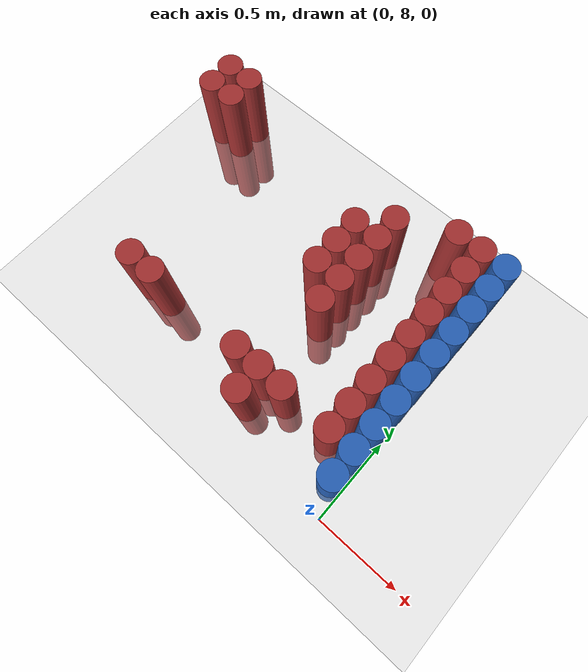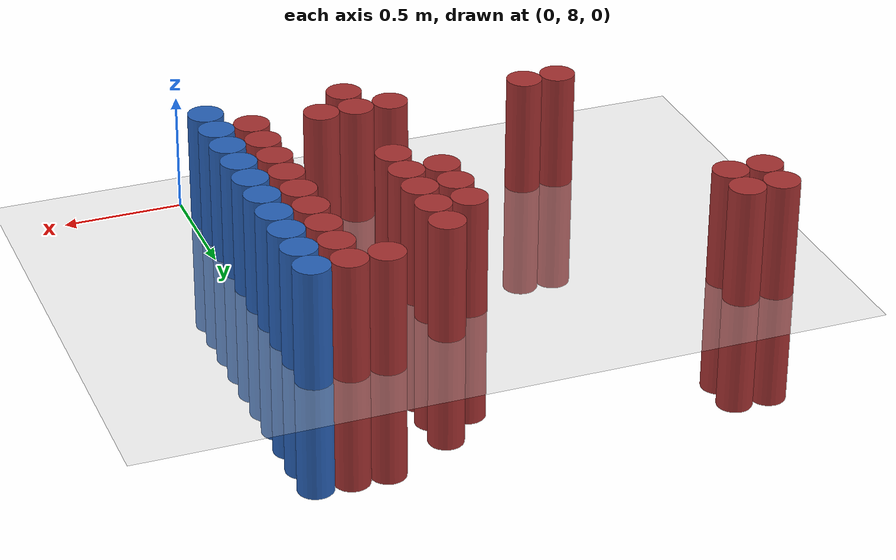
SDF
<sdf version="1.6">
 <world name="default">
  <model name="ground_plane">
   <static>1</static>
   <link name="link">
    <collision name="collision">
     <geometry><plane><normal>0 0 1</normal><size>100 100</size></plane></geometry>
     <surface><friction><ode><mu>100</mu><mu2>50</mu2></ode></friction></surface>
    </collision>
    <visual name="visual">
     <cast_shadows>0</cast_shadows>
     <geometry><plane><normal>0 0 1</normal><size>100 100</size></plane></geometry>
     <material>
      <script><uri>file://media/materials/scripts/gazebo.material</uri><name>Gazebo/Grey</name></script>
     </material>
    </visual>
   </link>
  </model>
  <model name="unit_cylinder_199">
   <static>1</static>
   <pose>-2.025000 9.375000 0.000000 0.000000 0.000000 0.000000</pose>
   <link name="link">
    <inertial>
     <mass>1</mass>
     <inertia><ixx>0.145833</ixx><ixy>0</ixy><ixz>0</ixz><iyy>0.145833</iyy><iyz>0</iyz><izz>0.125</izz></inertia>
    </inertial>
    <collision name="collision">
     <geometry><cylinder><radius>0.075000</radius><length>1</length></cylinder></geometry>
    </collision>
    <visual name="visual">
     <geometry><cylinder><radius>0.075000</radius><length>1</length></cylinder></geometry>
     <material>
      <ambient>0.648000 0.192000 0.192000 1</ambient>
      <diffuse>0.648000 0.192000 0.192000 1</diffuse>
     </material>
     <material>
      <script><name>Gazebo/Grey</name><uri>file://media/materials/scripts/gazebo.material</uri></script>
     </material>
    </visual>
    <sensor name="sensor_contact" type="contact"><contact><collision>collision</collision></contact></sensor>
   </link>
   <plugin filename="gz-sim-touchplugin-system" name="gz::sim::systems::TouchPlugin">
    <target>robot</target>
    <namespace>robot</namespace>
    <time>0.001</time>
    <enabled>true</enabled>
   </plugin>
  </model>
  <model name="unit_cylinder_200">
   <static>1</static>
   <pose>-2.025000 9.525000 0.000000 0.000000 0.000000 0.000000</pose>
   <link name="link">
    <inertial>
     <mass>1</mass>
     <inertia><ixx>0.145833</ixx><ixy>0</ixy><ixz>0</ixz><iyy>0.145833</iyy><iyz>0</iyz><izz>0.125</izz></inertia>
    </inertial>
    <collision name="collision">
     <geometry><cylinder><radius>0.075000</radius><length>1</length></cylinder></geometry>
    </collision>
    <visual name="visual">
     <geometry><cylinder><radius>0.075000</radius><length>1</length></cylinder></geometry>
     <material>
      <ambient>0.648000 0.192000 0.192000 1</ambient>
      <diffuse>0.648000 0.192000 0.192000 1</diffuse>
     </material>
     <material>
      <script><name>Gazebo/Grey</name><uri>file://media/materials/scripts/gazebo.material</uri></script>
     </material>
    </visual>
    <sensor name="sensor_contact" type="contact"><contact><collision>collision</collision></contact></sensor>
   </link>
   <plugin filename="gz-sim-touchplugin-system" name="gz::sim::systems::TouchPlugin">
    <target>robot</target>
    <namespace>robot</namespace>
    <time>0.001</time>
    <enabled>true</enabled>
   </plugin>
  </model>
  <model name="unit_cylinder_205">
   <static>1</static>
   <pose>-1.875000 9.375000 0.000000 0.000000 0.000000 0.000000</pose>
   <link name="link">
    <inertial>
     <mass>1</mass>
     <inertia><ixx>0.145833</ixx><ixy>0</ixy><ixz>0</ixz><iyy>0.145833</iyy><iyz>0</iyz><izz>0.125</izz></inertia>
    </inertial>
    <collision name="collision">
     <geometry><cylinder><radius>0.075000</radius><length>1</length></cylinder></geometry>
    </collision>
    <visual name="visual">
     <geometry><cylinder><radius>0.075000</radius><length>1</length></cylinder></geometry>
     <material>
      <ambient>0.648000 0.192000 0.192000 1</ambient>
      <diffuse>0.648000 0.192000 0.192000 1</diffuse>
     </material>
     <material>
      <script><name>Gazebo/Grey</name><uri>file://media/materials/scripts/gazebo.material</uri></script>
     </material>
    </visual>
    <sensor name="sensor_contact" type="contact"><contact><collision>collision</collision></contact></sensor>
   </link>
   <plugin filename="gz-sim-touchplugin-system" name="gz::sim::systems::TouchPlugin">
    <target>robot</target>
    <namespace>robot</namespace>
    <time>0.001</time>
    <enabled>true</enabled>
   </plugin>
  </model>
  <model name="unit_cylinder_206">
   <static>1</static>
   <pose>-1.875000 9.525000 0.000000 0.000000 0.000000 0.000000</pose>
   <link name="link">
    <inertial>
     <mass>1</mass>
     <inertia><ixx>0.145833</ixx><ixy>0</ixy><ixz>0</ixz><iyy>0.145833</iyy><iyz>0</iyz><izz>0.125</izz></inertia>
    </inertial>
    <collision name="collision">
     <geometry><cylinder><radius>0.075000</radius><length>1</length></cylinder></geometry>
    </collision>
    <visual name="visual">
     <geometry><cylinder><radius>0.075000</radius><length>1</length></cylinder></geometry>
     <material>
      <ambient>0.648000 0.192000 0.192000 1</ambient>
      <diffuse>0.648000 0.192000 0.192000 1</diffuse>
     </material>
     <material>
      <script><name>Gazebo/Grey</name><uri>file://media/materials/scripts/gazebo.material</uri></script>
     </material>
    </visual>
    <sensor name="sensor_contact" type="contact"><contact><collision>collision</collision></contact></sensor>
   </link>
   <plugin filename="gz-sim-touchplugin-system" name="gz::sim::systems::TouchPlugin">
    <target>robot</target>
    <namespace>robot</namespace>
    <time>0.001</time>
    <enabled>true</enabled>
   </plugin>
  </model>
  <model name="unit_cylinder_223">
   <static>1</static>
   <pose>-1.575000 8.325000 0.000000 0.000000 0.000000 0.000000</pose>
   <link name="link">
    <inertial>
     <mass>1</mass>
     <inertia><ixx>0.145833</ixx><ixy>0</ixy><ixz>0</ixz><iyy>0.145833</iyy><iyz>0</iyz><izz>0.125</izz></inertia>
    </inertial>
    <collision name="collision">
     <geometry><cylinder><radius>0.075000</radius><length>1</length></cylinder></geometry>
    </collision>
    <visual name="visual">
     <geometry><cylinder><radius>0.075000</radius><length>1</length></cylinder></geometry>
     <material>
      <ambient>0.648000 0.192000 0.192000 1</ambient>
      <diffuse>0.648000 0.192000 0.192000 1</diffuse>
     </material>
     <material>
      <script><name>Gazebo/Grey</name><uri>file://media/materials/scripts/gazebo.material</uri></script>
     </material>
    </visual>
    <sensor name="sensor_contact" type="contact"><contact><collision>collision</collision></contact></sensor>
   </link>
   <plugin filename="gz-sim-touchplugin-system" name="gz::sim::systems::TouchPlugin">
    <target>robot</target>
    <namespace>robot</namespace>
    <time>0.001</time>
    <enabled>true</enabled>
   </plugin>
  </model>
  <model name="unit_cylinder_229">
   <static>1</static>
   <pose>-1.425000 8.325000 0.000000 0.000000 0.000000 0.000000</pose>
   <link name="link">
    <inertial>
     <mass>1</mass>
     <inertia><ixx>0.145833</ixx><ixy>0</ixy><ixz>0</ixz><iyy>0.145833</iyy><iyz>0</iyz><izz>0.125</izz></inertia>
    </inertial>
    <collision name="collision">
     <geometry><cylinder><radius>0.075000</radius><length>1</length></cylinder></geometry>
    </collision>
    <visual name="visual">
     <geometry><cylinder><radius>0.075000</radius><length>1</length></cylinder></geometry>
     <material>
      <ambient>0.648000 0.192000 0.192000 1</ambient>
      <diffuse>0.648000 0.192000 0.192000 1</diffuse>
     </material>
     <material>
      <script><name>Gazebo/Grey</name><uri>file://media/materials/scripts/gazebo.material</uri></script>
     </material>
    </visual>
    <sensor name="sensor_contact" type="contact"><contact><collision>collision</collision></contact></sensor>
   </link>
   <plugin filename="gz-sim-touchplugin-system" name="gz::sim::systems::TouchPlugin">
    <target>robot</target>
    <namespace>robot</namespace>
    <time>0.001</time>
    <enabled>true</enabled>
   </plugin>
  </model>
  <model name="unit_cylinder_258">
   <static>1</static>
   <pose>-0.825000 8.325000 0.000000 0.000000 0.000000 0.000000</pose>
   <link name="link">
    <inertial>
     <mass>1</mass>
     <inertia><ixx>0.145833</ixx><ixy>0</ixy><ixz>0</ixz><iyy>0.145833</iyy><iyz>0</iyz><izz>0.125</izz></inertia>
    </inertial>
    <collision name="collision">
     <geometry><cylinder><radius>0.075000</radius><length>1</length></cylinder></geometry>
    </collision>
    <visual name="visual">
     <geometry><cylinder><radius>0.075000</radius><length>1</length></cylinder></geometry>
     <material>
      <ambient>0.648000 0.192000 0.192000 1</ambient>
      <diffuse>0.648000 0.192000 0.192000 1</diffuse>
     </material>
     <material>
      <script><name>Gazebo/Grey</name><uri>file://media/materials/scripts/gazebo.material</uri></script>
     </material>
    </visual>
    <sensor name="sensor_contact" type="contact"><contact><collision>collision</collision></contact></sensor>
   </link>
   <plugin filename="gz-sim-touchplugin-system" name="gz::sim::systems::TouchPlugin">
    <target>robot</target>
    <namespace>robot</namespace>
    <time>0.001</time>
    <enabled>true</enabled>
   </plugin>
  </model>
  <model name="unit_cylinder_259">
   <static>1</static>
   <pose>-0.825000 8.925000 0.000000 0.000000 0.000000 0.000000</pose>
   <link name="link">
    <inertial>
     <mass>1</mass>
     <inertia><ixx>0.145833</ixx><ixy>0</ixy><ixz>0</ixz><iyy>0.145833</iyy><iyz>0</iyz><izz>0.125</izz></inertia>
    </inertial>
    <collision name="collision">
     <geometry><cylinder><radius>0.075000</radius><length>1</length></cylinder></geometry>
    </collision>
    <visual name="visual">
     <geometry><cylinder><radius>0.075000</radius><length>1</length></cylinder></geometry>
     <material>
      <ambient>0.648000 0.192000 0.192000 1</ambient>
      <diffuse>0.648000 0.192000 0.192000 1</diffuse>
     </material>
     <material>
      <script><name>Gazebo/Grey</name><uri>file://media/materials/scripts/gazebo.material</uri></script>
     </material>
    </visual>
    <sensor name="sensor_contact" type="contact"><contact><collision>collision</collision></contact></sensor>
   </link>
   <plugin filename="gz-sim-touchplugin-system" name="gz::sim::systems::TouchPlugin">
    <target>robot</target>
    <namespace>robot</namespace>
    <time>0.001</time>
    <enabled>true</enabled>
   </plugin>
  </model>
  <model name="unit_cylinder_260">
   <static>1</static>
   <pose>-0.825000 9.075000 0.000000 0.000000 0.000000 0.000000</pose>
   <link name="link">
    <inertial>
     <mass>1</mass>
     <inertia><ixx>0.145833</ixx><ixy>0</ixy><ixz>0</ixz><iyy>0.145833</iyy><iyz>0</iyz><izz>0.125</izz></inertia>
    </inertial>
    <collision name="collision">
     <geometry><cylinder><radius>0.075000</radius><length>1</length></cylinder></geometry>
    </collision>
    <visual name="visual">
     <geometry><cylinder><radius>0.075000</radius><length>1</length></cylinder></geometry>
     <material>
      <ambient>0.648000 0.192000 0.192000 1</ambient>
      <diffuse>0.648000 0.192000 0.192000 1</diffuse>
     </material>
     <material>
      <script><name>Gazebo/Grey</name><uri>file://media/materials/scripts/gazebo.material</uri></script>
     </material>
    </visual>
    <sensor name="sensor_contact" type="contact"><contact><collision>collision</collision></contact></sensor>
   </link>
   <plugin filename="gz-sim-touchplugin-system" name="gz::sim::systems::TouchPlugin">
    <target>robot</target>
    <namespace>robot</namespace>
    <time>0.001</time>
    <enabled>true</enabled>
   </plugin>
  </model>
  <model name="unit_cylinder_261">
   <static>1</static>
   <pose>-0.825000 9.225000 0.000000 0.000000 0.000000 0.000000</pose>
   <link name="link">
    <inertial>
     <mass>1</mass>
     <inertia><ixx>0.145833</ixx><ixy>0</ixy><ixz>0</ixz><iyy>0.145833</iyy><iyz>0</iyz><izz>0.125</izz></inertia>
    </inertial>
    <collision name="collision">
     <geometry><cylinder><radius>0.075000</radius><length>1</length></cylinder></geometry>
    </collision>
    <visual name="visual">
     <geometry><cylinder><radius>0.075000</radius><length>1</length></cylinder></geometry>
     <material>
      <ambient>0.648000 0.192000 0.192000 1</ambient>
      <diffuse>0.648000 0.192000 0.192000 1</diffuse>
     </material>
     <material>
      <script><name>Gazebo/Grey</name><uri>file://media/materials/scripts/gazebo.material</uri></script>
     </material>
    </visual>
    <sensor name="sensor_contact" type="contact"><contact><collision>collision</collision></contact></sensor>
   </link>
   <plugin filename="gz-sim-touchplugin-system" name="gz::sim::systems::TouchPlugin">
    <target>robot</target>
    <namespace>robot</namespace>
    <time>0.001</time>
    <enabled>true</enabled>
   </plugin>
  </model>
  <model name="unit_cylinder_265">
   <static>1</static>
   <pose>-0.675000 8.175000 0.000000 0.000000 0.000000 0.000000</pose>
   <link name="link">
    <inertial>
     <mass>1</mass>
     <inertia><ixx>0.145833</ixx><ixy>0</ixy><ixz>0</ixz><iyy>0.145833</iyy><iyz>0</iyz><izz>0.125</izz></inertia>
    </inertial>
    <collision name="collision">
     <geometry><cylinder><radius>0.075000</radius><length>1</length></cylinder></geometry>
    </collision>
    <visual name="visual">
     <geometry><cylinder><radius>0.075000</radius><length>1</length></cylinder></geometry>
     <material>
      <ambient>0.648000 0.192000 0.192000 1</ambient>
      <diffuse>0.648000 0.192000 0.192000 1</diffuse>
     </material>
     <material>
      <script><name>Gazebo/Grey</name><uri>file://media/materials/scripts/gazebo.material</uri></script>
     </material>
    </visual>
    <sensor name="sensor_contact" type="contact"><contact><collision>collision</collision></contact></sensor>
   </link>
   <plugin filename="gz-sim-touchplugin-system" name="gz::sim::systems::TouchPlugin">
    <target>robot</target>
    <namespace>robot</namespace>
    <time>0.001</time>
    <enabled>true</enabled>
   </plugin>
  </model>
  <model name="unit_cylinder_266">
   <static>1</static>
   <pose>-0.675000 8.325000 0.000000 0.000000 0.000000 0.000000</pose>
   <link name="link">
    <inertial>
     <mass>1</mass>
     <inertia><ixx>0.145833</ixx><ixy>0</ixy><ixz>0</ixz><iyy>0.145833</iyy><iyz>0</iyz><izz>0.125</izz></inertia>
    </inertial>
    <collision name="collision">
     <geometry><cylinder><radius>0.075000</radius><length>1</length></cylinder></geometry>
    </collision>
    <visual name="visual">
     <geometry><cylinder><radius>0.075000</radius><length>1</length></cylinder></geometry>
     <material>
      <ambient>0.648000 0.192000 0.192000 1</ambient>
      <diffuse>0.648000 0.192000 0.192000 1</diffuse>
     </material>
     <material>
      <script><name>Gazebo/Grey</name><uri>file://media/materials/scripts/gazebo.material</uri></script>
     </material>
    </visual>
    <sensor name="sensor_contact" type="contact"><contact><collision>collision</collision></contact></sensor>
   </link>
   <plugin filename="gz-sim-touchplugin-system" name="gz::sim::systems::TouchPlugin">
    <target>robot</target>
    <namespace>robot</namespace>
    <time>0.001</time>
    <enabled>true</enabled>
   </plugin>
  </model>
  <model name="unit_cylinder_267">
   <static>1</static>
   <pose>-0.675000 8.775000 0.000000 0.000000 0.000000 0.000000</pose>
   <link name="link">
    <inertial>
     <mass>1</mass>
     <inertia><ixx>0.145833</ixx><ixy>0</ixy><ixz>0</ixz><iyy>0.145833</iyy><iyz>0</iyz><izz>0.125</izz></inertia>
    </inertial>
    <collision name="collision">
     <geometry><cylinder><radius>0.075000</radius><length>1</length></cylinder></geometry>
    </collision>
    <visual name="visual">
     <geometry><cylinder><radius>0.075000</radius><length>1</length></cylinder></geometry>
     <material>
      <ambient>0.648000 0.192000 0.192000 1</ambient>
      <diffuse>0.648000 0.192000 0.192000 1</diffuse>
     </material>
     <material>
      <script><name>Gazebo/Grey</name><uri>file://media/materials/scripts/gazebo.material</uri></script>
     </material>
    </visual>
    <sensor name="sensor_contact" type="contact"><contact><collision>collision</collision></contact></sensor>
   </link>
   <plugin filename="gz-sim-touchplugin-system" name="gz::sim::systems::TouchPlugin">
    <target>robot</target>
    <namespace>robot</namespace>
    <time>0.001</time>
    <enabled>true</enabled>
   </plugin>
  </model>
  <model name="unit_cylinder_268">
   <static>1</static>
   <pose>-0.675000 8.925000 0.000000 0.000000 0.000000 0.000000</pose>
   <link name="link">
    <inertial>
     <mass>1</mass>
     <inertia><ixx>0.145833</ixx><ixy>0</ixy><ixz>0</ixz><iyy>0.145833</iyy><iyz>0</iyz><izz>0.125</izz></inertia>
    </inertial>
    <collision name="collision">
     <geometry><cylinder><radius>0.075000</radius><length>1</length></cylinder></geometry>
    </collision>
    <visual name="visual">
     <geometry><cylinder><radius>0.075000</radius><length>1</length></cylinder></geometry>
     <material>
      <ambient>0.648000 0.192000 0.192000 1</ambient>
      <diffuse>0.648000 0.192000 0.192000 1</diffuse>
     </material>
     <material>
      <script><name>Gazebo/Grey</name><uri>file://media/materials/scripts/gazebo.material</uri></script>
     </material>
    </visual>
    <sensor name="sensor_contact" type="contact"><contact><collision>collision</collision></contact></sensor>
   </link>
   <plugin filename="gz-sim-touchplugin-system" name="gz::sim::systems::TouchPlugin">
    <target>robot</target>
    <namespace>robot</namespace>
    <time>0.001</time>
    <enabled>true</enabled>
   </plugin>
  </model>
  <model name="unit_cylinder_269">
   <static>1</static>
   <pose>-0.675000 9.075000 0.000000 0.000000 0.000000 0.000000</pose>
   <link name="link">
    <inertial>
     <mass>1</mass>
     <inertia><ixx>0.145833</ixx><ixy>0</ixy><ixz>0</ixz><iyy>0.145833</iyy><iyz>0</iyz><izz>0.125</izz></inertia>
    </inertial>
    <collision name="collision">
     <geometry><cylinder><radius>0.075000</radius><length>1</length></cylinder></geometry>
    </collision>
    <visual name="visual">
     <geometry><cylinder><radius>0.075000</radius><length>1</length></cylinder></geometry>
     <material>
      <ambient>0.648000 0.192000 0.192000 1</ambient>
      <diffuse>0.648000 0.192000 0.192000 1</diffuse>
     </material>
     <material>
      <script><name>Gazebo/Grey</name><uri>file://media/materials/scripts/gazebo.material</uri></script>
     </material>
    </visual>
    <sensor name="sensor_contact" type="contact"><contact><collision>collision</collision></contact></sensor>
   </link>
   <plugin filename="gz-sim-touchplugin-system" name="gz::sim::systems::TouchPlugin">
    <target>robot</target>
    <namespace>robot</namespace>
    <time>0.001</time>
    <enabled>true</enabled>
   </plugin>
  </model>
  <model name="unit_cylinder_270">
   <static>1</static>
   <pose>-0.675000 9.225000 0.000000 0.000000 0.000000 0.000000</pose>
   <link name="link">
    <inertial>
     <mass>1</mass>
     <inertia><ixx>0.145833</ixx><ixy>0</ixy><ixz>0</ixz><iyy>0.145833</iyy><iyz>0</iyz><izz>0.125</izz></inertia>
    </inertial>
    <collision name="collision">
     <geometry><cylinder><radius>0.075000</radius><length>1</length></cylinder></geometry>
    </collision>
    <visual name="visual">
     <geometry><cylinder><radius>0.075000</radius><length>1</length></cylinder></geometry>
     <material>
      <ambient>0.648000 0.192000 0.192000 1</ambient>
      <diffuse>0.648000 0.192000 0.192000 1</diffuse>
     </material>
     <material>
      <script><name>Gazebo/Grey</name><uri>file://media/materials/scripts/gazebo.material</uri></script>
     </material>
    </visual>
    <sensor name="sensor_contact" type="contact"><contact><collision>collision</collision></contact></sensor>
   </link>
   <plugin filename="gz-sim-touchplugin-system" name="gz::sim::systems::TouchPlugin">
    <target>robot</target>
    <namespace>robot</namespace>
    <time>0.001</time>
    <enabled>true</enabled>
   </plugin>
  </model>
  <model name="unit_cylinder_271">
   <static>1</static>
   <pose>-0.675000 9.375000 0.000000 0.000000 0.000000 0.000000</pose>
   <link name="link">
    <inertial>
     <mass>1</mass>
     <inertia><ixx>0.145833</ixx><ixy>0</ixy><ixz>0</ixz><iyy>0.145833</iyy><iyz>0</iyz><izz>0.125</izz></inertia>
    </inertial>
    <collision name="collision">
     <geometry><cylinder><radius>0.075000</radius><length>1</length></cylinder></geometry>
    </collision>
    <visual name="visual">
     <geometry><cylinder><radius>0.075000</radius><length>1</length></cylinder></geometry>
     <material>
      <ambient>0.648000 0.192000 0.192000 1</ambient>
      <diffuse>0.648000 0.192000 0.192000 1</diffuse>
     </material>
     <material>
      <script><name>Gazebo/Grey</name><uri>file://media/materials/scripts/gazebo.material</uri></script>
     </material>
    </visual>
    <sensor name="sensor_contact" type="contact"><contact><collision>collision</collision></contact></sensor>
   </link>
   <plugin filename="gz-sim-touchplugin-system" name="gz::sim::systems::TouchPlugin">
    <target>robot</target>
    <namespace>robot</namespace>
    <time>0.001</time>
    <enabled>true</enabled>
   </plugin>
  </model>
  <model name="unit_cylinder_278">
   <static>1</static>
   <pose>-0.525000 8.325000 0.000000 0.000000 0.000000 0.000000</pose>
   <link name="link">
    <inertial>
     <mass>1</mass>
     <inertia><ixx>0.145833</ixx><ixy>0</ixy><ixz>0</ixz><iyy>0.145833</iyy><iyz>0</iyz><izz>0.125</izz></inertia>
    </inertial>
    <collision name="collision">
     <geometry><cylinder><radius>0.075000</radius><length>1</length></cylinder></geometry>
    </collision>
    <visual name="visual">
     <geometry><cylinder><radius>0.075000</radius><length>1</length></cylinder></geometry>
     <material>
      <ambient>0.648000 0.192000 0.192000 1</ambient>
      <diffuse>0.648000 0.192000 0.192000 1</diffuse>
     </material>
     <material>
      <script><name>Gazebo/Grey</name><uri>file://media/materials/scripts/gazebo.material</uri></script>
     </material>
    </visual>
    <sensor name="sensor_contact" type="contact"><contact><collision>collision</collision></contact></sensor>
   </link>
   <plugin filename="gz-sim-touchplugin-system" name="gz::sim::systems::TouchPlugin">
    <target>robot</target>
    <namespace>robot</namespace>
    <time>0.001</time>
    <enabled>true</enabled>
   </plugin>
  </model>
  <model name="unit_cylinder_291">
   <static>1</static>
   <pose>-0.375000 9.525000 0.000000 0.000000 0.000000 0.000000</pose>
   <link name="link">
    <inertial>
     <mass>1</mass>
     <inertia><ixx>0.145833</ixx><ixy>0</ixy><ixz>0</ixz><iyy>0.145833</iyy><iyz>0</iyz><izz>0.125</izz></inertia>
    </inertial>
    <collision name="collision">
     <geometry><cylinder><radius>0.075000</radius><length>1</length></cylinder></geometry>
    </collision>
    <visual name="visual">
     <geometry><cylinder><radius>0.075000</radius><length>1</length></cylinder></geometry>
     <material>
      <ambient>0.648000 0.192000 0.192000 1</ambient>
      <diffuse>0.648000 0.192000 0.192000 1</diffuse>
     </material>
     <material>
      <script><name>Gazebo/Grey</name><uri>file://media/materials/scripts/gazebo.material</uri></script>
     </material>
    </visual>
    <sensor name="sensor_contact" type="contact"><contact><collision>collision</collision></contact></sensor>
   </link>
   <plugin filename="gz-sim-touchplugin-system" name="gz::sim::systems::TouchPlugin">
    <target>robot</target>
    <namespace>robot</namespace>
    <time>0.001</time>
    <enabled>true</enabled>
   </plugin>
  </model>
  <model name="unit_cylinder_297">
   <static>1</static>
   <pose>-0.225000 8.325000 0.000000 0.000000 0.000000 0.000000</pose>
   <link name="link">
    <inertial>
     <mass>1</mass>
     <inertia><ixx>0.145833</ixx><ixy>0</ixy><ixz>0</ixz><iyy>0.145833</iyy><iyz>0</iyz><izz>0.125</izz></inertia>
    </inertial>
    <collision name="collision">
     <geometry><cylinder><radius>0.075000</radius><length>1</length></cylinder></geometry>
    </collision>
    <visual name="visual">
     <geometry><cylinder><radius>0.075000</radius><length>1</length></cylinder></geometry>
     <material>
      <ambient>0.648000 0.192000 0.192000 1</ambient>
      <diffuse>0.648000 0.192000 0.192000 1</diffuse>
     </material>
     <material>
      <script><name>Gazebo/Grey</name><uri>file://media/materials/scripts/gazebo.material</uri></script>
     </material>
    </visual>
    <sensor name="sensor_contact" type="contact"><contact><collision>collision</collision></contact></sensor>
   </link>
   <plugin filename="gz-sim-touchplugin-system" name="gz::sim::systems::TouchPlugin">
    <target>robot</target>
    <namespace>robot</namespace>
    <time>0.001</time>
    <enabled>true</enabled>
   </plugin>
  </model>
  <model name="unit_cylinder_298">
   <static>1</static>
   <pose>-0.225000 8.475000 0.000000 0.000000 0.000000 0.000000</pose>
   <link name="link">
    <inertial>
     <mass>1</mass>
     <inertia><ixx>0.145833</ixx><ixy>0</ixy><ixz>0</ixz><iyy>0.145833</iyy><iyz>0</iyz><izz>0.125</izz></inertia>
    </inertial>
    <collision name="collision">
     <geometry><cylinder><radius>0.075000</radius><length>1</length></cylinder></geometry>
    </collision>
    <visual name="visual">
     <geometry><cylinder><radius>0.075000</radius><length>1</length></cylinder></geometry>
     <material>
      <ambient>0.648000 0.192000 0.192000 1</ambient>
      <diffuse>0.648000 0.192000 0.192000 1</diffuse>
     </material>
     <material>
      <script><name>Gazebo/Grey</name><uri>file://media/materials/scripts/gazebo.material</uri></script>
     </material>
    </visual>
    <sensor name="sensor_contact" type="contact"><contact><collision>collision</collision></contact></sensor>
   </link>
   <plugin filename="gz-sim-touchplugin-system" name="gz::sim::systems::TouchPlugin">
    <target>robot</target>
    <namespace>robot</namespace>
    <time>0.001</time>
    <enabled>true</enabled>
   </plugin>
  </model>
  <model name="unit_cylinder_299">
   <static>1</static>
   <pose>-0.225000 8.625000 0.000000 0.000000 0.000000 0.000000</pose>
   <link name="link">
    <inertial>
     <mass>1</mass>
     <inertia><ixx>0.145833</ixx><ixy>0</ixy><ixz>0</ixz><iyy>0.145833</iyy><iyz>0</iyz><izz>0.125</izz></inertia>
    </inertial>
    <collision name="collision">
     <geometry><cylinder><radius>0.075000</radius><length>1</length></cylinder></geometry>
    </collision>
    <visual name="visual">
     <geometry><cylinder><radius>0.075000</radius><length>1</length></cylinder></geometry>
     <material>
      <ambient>0.648000 0.192000 0.192000 1</ambient>
      <diffuse>0.648000 0.192000 0.192000 1</diffuse>
     </material>
     <material>
      <script><name>Gazebo/Grey</name><uri>file://media/materials/scripts/gazebo.material</uri></script>
     </material>
    </visual>
    <sensor name="sensor_contact" type="contact"><contact><collision>collision</collision></contact></sensor>
   </link>
   <plugin filename="gz-sim-touchplugin-system" name="gz::sim::systems::TouchPlugin">
    <target>robot</target>
    <namespace>robot</namespace>
    <time>0.001</time>
    <enabled>true</enabled>
   </plugin>
  </model>
  <model name="unit_cylinder_300">
   <static>1</static>
   <pose>-0.225000 8.775000 0.000000 0.000000 0.000000 0.000000</pose>
   <link name="link">
    <inertial>
     <mass>1</mass>
     <inertia><ixx>0.145833</ixx><ixy>0</ixy><ixz>0</ixz><iyy>0.145833</iyy><iyz>0</iyz><izz>0.125</izz></inertia>
    </inertial>
    <collision name="collision">
     <geometry><cylinder><radius>0.075000</radius><length>1</length></cylinder></geometry>
    </collision>
    <visual name="visual">
     <geometry><cylinder><radius>0.075000</radius><length>1</length></cylinder></geometry>
     <material>
      <ambient>0.648000 0.192000 0.192000 1</ambient>
      <diffuse>0.648000 0.192000 0.192000 1</diffuse>
     </material>
     <material>
      <script><name>Gazebo/Grey</name><uri>file://media/materials/scripts/gazebo.material</uri></script>
     </material>
    </visual>
    <sensor name="sensor_contact" type="contact"><contact><collision>collision</collision></contact></sensor>
   </link>
   <plugin filename="gz-sim-touchplugin-system" name="gz::sim::systems::TouchPlugin">
    <target>robot</target>
    <namespace>robot</namespace>
    <time>0.001</time>
    <enabled>true</enabled>
   </plugin>
  </model>
  <model name="unit_cylinder_301">
   <static>1</static>
   <pose>-0.225000 8.925000 0.000000 0.000000 0.000000 0.000000</pose>
   <link name="link">
    <inertial>
     <mass>1</mass>
     <inertia><ixx>0.145833</ixx><ixy>0</ixy><ixz>0</ixz><iyy>0.145833</iyy><iyz>0</iyz><izz>0.125</izz></inertia>
    </inertial>
    <collision name="collision">
     <geometry><cylinder><radius>0.075000</radius><length>1</length></cylinder></geometry>
    </collision>
    <visual name="visual">
     <geometry><cylinder><radius>0.075000</radius><length>1</length></cylinder></geometry>
     <material>
      <ambient>0.648000 0.192000 0.192000 1</ambient>
      <diffuse>0.648000 0.192000 0.192000 1</diffuse>
     </material>
     <material>
      <script><name>Gazebo/Grey</name><uri>file://media/materials/scripts/gazebo.material</uri></script>
     </material>
    </visual>
    <sensor name="sensor_contact" type="contact"><contact><collision>collision</collision></contact></sensor>
   </link>
   <plugin filename="gz-sim-touchplugin-system" name="gz::sim::systems::TouchPlugin">
    <target>robot</target>
    <namespace>robot</namespace>
    <time>0.001</time>
    <enabled>true</enabled>
   </plugin>
  </model>
  <model name="unit_cylinder_302">
   <static>1</static>
   <pose>-0.225000 9.075000 0.000000 0.000000 0.000000 0.000000</pose>
   <link name="link">
    <inertial>
     <mass>1</mass>
     <inertia><ixx>0.145833</ixx><ixy>0</ixy><ixz>0</ixz><iyy>0.145833</iyy><iyz>0</iyz><izz>0.125</izz></inertia>
    </inertial>
    <collision name="collision">
     <geometry><cylinder><radius>0.075000</radius><length>1</length></cylinder></geometry>
    </collision>
    <visual name="visual">
     <geometry><cylinder><radius>0.075000</radius><length>1</length></cylinder></geometry>
     <material>
      <ambient>0.648000 0.192000 0.192000 1</ambient>
      <diffuse>0.648000 0.192000 0.192000 1</diffuse>
     </material>
     <material>
      <script><name>Gazebo/Grey</name><uri>file://media/materials/scripts/gazebo.material</uri></script>
     </material>
    </visual>
    <sensor name="sensor_contact" type="contact"><contact><collision>collision</collision></contact></sensor>
   </link>
   <plugin filename="gz-sim-touchplugin-system" name="gz::sim::systems::TouchPlugin">
    <target>robot</target>
    <namespace>robot</namespace>
    <time>0.001</time>
    <enabled>true</enabled>
   </plugin>
  </model>
  <model name="unit_cylinder_303">
   <static>1</static>
   <pose>-0.225000 9.225000 0.000000 0.000000 0.000000 0.000000</pose>
   <link name="link">
    <inertial>
     <mass>1</mass>
     <inertia><ixx>0.145833</ixx><ixy>0</ixy><ixz>0</ixz><iyy>0.145833</iyy><iyz>0</iyz><izz>0.125</izz></inertia>
    </inertial>
    <collision name="collision">
     <geometry><cylinder><radius>0.075000</radius><length>1</length></cylinder></geometry>
    </collision>
    <visual name="visual">
     <geometry><cylinder><radius>0.075000</radius><length>1</length></cylinder></geometry>
     <material>
      <ambient>0.648000 0.192000 0.192000 1</ambient>
      <diffuse>0.648000 0.192000 0.192000 1</diffuse>
     </material>
     <material>
      <script><name>Gazebo/Grey</name><uri>file://media/materials/scripts/gazebo.material</uri></script>
     </material>
    </visual>
    <sensor name="sensor_contact" type="contact"><contact><collision>collision</collision></contact></sensor>
   </link>
   <plugin filename="gz-sim-touchplugin-system" name="gz::sim::systems::TouchPlugin">
    <target>robot</target>
    <namespace>robot</namespace>
    <time>0.001</time>
    <enabled>true</enabled>
   </plugin>
  </model>
  <model name="unit_cylinder_304">
   <static>1</static>
   <pose>-0.225000 9.375000 0.000000 0.000000 0.000000 0.000000</pose>
   <link name="link">
    <inertial>
     <mass>1</mass>
     <inertia><ixx>0.145833</ixx><ixy>0</ixy><ixz>0</ixz><iyy>0.145833</iyy><iyz>0</iyz><izz>0.125</izz></inertia>
    </inertial>
    <collision name="collision">
     <geometry><cylinder><radius>0.075000</radius><length>1</length></cylinder></geometry>
    </collision>
    <visual name="visual">
     <geometry><cylinder><radius>0.075000</radius><length>1</length></cylinder></geometry>
     <material>
      <ambient>0.648000 0.192000 0.192000 1</ambient>
      <diffuse>0.648000 0.192000 0.192000 1</diffuse>
     </material>
     <material>
      <script><name>Gazebo/Grey</name><uri>file://media/materials/scripts/gazebo.material</uri></script>
     </material>
    </visual>
    <sensor name="sensor_contact" type="contact"><contact><collision>collision</collision></contact></sensor>
   </link>
   <plugin filename="gz-sim-touchplugin-system" name="gz::sim::systems::TouchPlugin">
    <target>robot</target>
    <namespace>robot</namespace>
    <time>0.001</time>
    <enabled>true</enabled>
   </plugin>
  </model>
  <model name="unit_cylinder_305">
   <static>1</static>
   <pose>-0.225000 9.525000 0.000000 0.000000 0.000000 0.000000</pose>
   <link name="link">
    <inertial>
     <mass>1</mass>
     <inertia><ixx>0.145833</ixx><ixy>0</ixy><ixz>0</ixz><iyy>0.145833</iyy><iyz>0</iyz><izz>0.125</izz></inertia>
    </inertial>
    <collision name="collision">
     <geometry><cylinder><radius>0.075000</radius><length>1</length></cylinder></geometry>
    </collision>
    <visual name="visual">
     <geometry><cylinder><radius>0.075000</radius><length>1</length></cylinder></geometry>
     <material>
      <ambient>0.648000 0.192000 0.192000 1</ambient>
      <diffuse>0.648000 0.192000 0.192000 1</diffuse>
     </material>
     <material>
      <script><name>Gazebo/Grey</name><uri>file://media/materials/scripts/gazebo.material</uri></script>
     </material>
    </visual>
    <sensor name="sensor_contact" type="contact"><contact><collision>collision</collision></contact></sensor>
   </link>
   <plugin filename="gz-sim-touchplugin-system" name="gz::sim::systems::TouchPlugin">
    <target>robot</target>
    <namespace>robot</namespace>
    <time>0.001</time>
    <enabled>true</enabled>
   </plugin>
  </model>
  <model name="unit_cylinder_326">
   <static>1</static>
   <pose>-0.075000 8.175000 0.000000 0.000000 0.000000 0.000000</pose>
   <link name="link">
    <inertial>
     <mass>1</mass>
     <inertia><ixx>0.145833</ixx><ixy>0</ixy><ixz>0</ixz><iyy>0.145833</iyy><iyz>0</iyz><izz>0.125</izz></inertia>
    </inertial>
    <collision name="collision">
     <geometry><cylinder><radius>0.075000</radius><length>1</length></cylinder></geometry>
    </collision>
    <visual name="visual">
     <geometry><cylinder><radius>0.075000</radius><length>1</length></cylinder></geometry>
     <material>
      <ambient>0.152000 0.379000 0.720000 1</ambient>
      <diffuse>0.152000 0.379000 0.720000 1</diffuse>
     </material>
     <material>
      <script><name>Gazebo/Grey</name><uri>file://media/materials/scripts/gazebo.material</uri></script>
     </material>
    </visual>
    <sensor name="sensor_contact" type="contact"><contact><collision>collision</collision></contact></sensor>
   </link>
   <plugin filename="gz-sim-touchplugin-system" name="gz::sim::systems::TouchPlugin">
    <target>robot</target>
    <namespace>robot</namespace>
    <time>0.001</time>
    <enabled>true</enabled>
   </plugin>
  </model>
  <model name="unit_cylinder_327">
   <static>1</static>
   <pose>-0.075000 8.325000 0.000000 0.000000 0.000000 0.000000</pose>
   <link name="link">
    <inertial>
     <mass>1</mass>
     <inertia><ixx>0.145833</ixx><ixy>0</ixy><ixz>0</ixz><iyy>0.145833</iyy><iyz>0</iyz><izz>0.125</izz></inertia>
    </inertial>
    <collision name="collision">
     <geometry><cylinder><radius>0.075000</radius><length>1</length></cylinder></geometry>
    </collision>
    <visual name="visual">
     <geometry><cylinder><radius>0.075000</radius><length>1</length></cylinder></geometry>
     <material>
      <ambient>0.152000 0.379000 0.720000 1</ambient>
      <diffuse>0.152000 0.379000 0.720000 1</diffuse>
     </material>
     <material>
      <script><name>Gazebo/Grey</name><uri>file://media/materials/scripts/gazebo.material</uri></script>
     </material>
    </visual>
    <sensor name="sensor_contact" type="contact"><contact><collision>collision</collision></contact></sensor>
   </link>
   <plugin filename="gz-sim-touchplugin-system" name="gz::sim::systems::TouchPlugin">
    <target>robot</target>
    <namespace>robot</namespace>
    <time>0.001</time>
    <enabled>true</enabled>
   </plugin>
  </model>
  <model name="unit_cylinder_328">
   <static>1</static>
   <pose>-0.075000 8.475000 0.000000 0.000000 0.000000 0.000000</pose>
   <link name="link">
    <inertial>
     <mass>1</mass>
     <inertia><ixx>0.145833</ixx><ixy>0</ixy><ixz>0</ixz><iyy>0.145833</iyy><iyz>0</iyz><izz>0.125</izz></inertia>
    </inertial>
    <collision name="collision">
     <geometry><cylinder><radius>0.075000</radius><length>1</length></cylinder></geometry>
    </collision>
    <visual name="visual">
     <geometry><cylinder><radius>0.075000</radius><length>1</length></cylinder></geometry>
     <material>
      <ambient>0.152000 0.379000 0.720000 1</ambient>
      <diffuse>0.152000 0.379000 0.720000 1</diffuse>
     </material>
     <material>
      <script><name>Gazebo/Grey</name><uri>file://media/materials/scripts/gazebo.material</uri></script>
     </material>
    </visual>
    <sensor name="sensor_contact" type="contact"><contact><collision>collision</collision></contact></sensor>
   </link>
   <plugin filename="gz-sim-touchplugin-system" name="gz::sim::systems::TouchPlugin">
    <target>robot</target>
    <namespace>robot</namespace>
    <time>0.001</time>
    <enabled>true</enabled>
   </plugin>
  </model>
  <model name="unit_cylinder_329">
   <static>1</static>
   <pose>-0.075000 8.625000 0.000000 0.000000 0.000000 0.000000</pose>
   <link name="link">
    <inertial>
     <mass>1</mass>
     <inertia><ixx>0.145833</ixx><ixy>0</ixy><ixz>0</ixz><iyy>0.145833</iyy><iyz>0</iyz><izz>0.125</izz></inertia>
    </inertial>
    <collision name="collision">
     <geometry><cylinder><radius>0.075000</radius><length>1</length></cylinder></geometry>
    </collision>
    <visual name="visual">
     <geometry><cylinder><radius>0.075000</radius><length>1</length></cylinder></geometry>
     <material>
      <ambient>0.152000 0.379000 0.720000 1</ambient>
      <diffuse>0.152000 0.379000 0.720000 1</diffuse>
     </material>
     <material>
      <script><name>Gazebo/Grey</name><uri>file://media/materials/scripts/gazebo.material</uri></script>
     </material>
    </visual>
    <sensor name="sensor_contact" type="contact"><contact><collision>collision</collision></contact></sensor>
   </link>
   <plugin filename="gz-sim-touchplugin-system" name="gz::sim::systems::TouchPlugin">
    <target>robot</target>
    <namespace>robot</namespace>
    <time>0.001</time>
    <enabled>true</enabled>
   </plugin>
  </model>
  <model name="unit_cylinder_330">
   <static>1</static>
   <pose>-0.075000 8.775000 0.000000 0.000000 0.000000 0.000000</pose>
   <link name="link">
    <inertial>
     <mass>1</mass>
     <inertia><ixx>0.145833</ixx><ixy>0</ixy><ixz>0</ixz><iyy>0.145833</iyy><iyz>0</iyz><izz>0.125</izz></inertia>
    </inertial>
    <collision name="collision">
     <geometry><cylinder><radius>0.075000</radius><length>1</length></cylinder></geometry>
    </collision>
    <visual name="visual">
     <geometry><cylinder><radius>0.075000</radius><length>1</length></cylinder></geometry>
     <material>
      <ambient>0.152000 0.379000 0.720000 1</ambient>
      <diffuse>0.152000 0.379000 0.720000 1</diffuse>
     </material>
     <material>
      <script><name>Gazebo/Grey</name><uri>file://media/materials/scripts/gazebo.material</uri></script>
     </material>
    </visual>
    <sensor name="sensor_contact" type="contact"><contact><collision>collision</collision></contact></sensor>
   </link>
   <plugin filename="gz-sim-touchplugin-system" name="gz::sim::systems::TouchPlugin">
    <target>robot</target>
    <namespace>robot</namespace>
    <time>0.001</time>
    <enabled>true</enabled>
   </plugin>
  </model>
  <model name="unit_cylinder_331">
   <static>1</static>
   <pose>-0.075000 8.925000 0.000000 0.000000 0.000000 0.000000</pose>
   <link name="link">
    <inertial>
     <mass>1</mass>
     <inertia><ixx>0.145833</ixx><ixy>0</ixy><ixz>0</ixz><iyy>0.145833</iyy><iyz>0</iyz><izz>0.125</izz></inertia>
    </inertial>
    <collision name="collision">
     <geometry><cylinder><radius>0.075000</radius><length>1</length></cylinder></geometry>
    </collision>
    <visual name="visual">
     <geometry><cylinder><radius>0.075000</radius><length>1</length></cylinder></geometry>
     <material>
      <ambient>0.152000 0.379000 0.720000 1</ambient>
      <diffuse>0.152000 0.379000 0.720000 1</diffuse>
     </material>
     <material>
      <script><name>Gazebo/Grey</name><uri>file://media/materials/scripts/gazebo.material</uri></script>
     </material>
    </visual>
    <sensor name="sensor_contact" type="contact"><contact><collision>collision</collision></contact></sensor>
   </link>
   <plugin filename="gz-sim-touchplugin-system" name="gz::sim::systems::TouchPlugin">
    <target>robot</target>
    <namespace>robot</namespace>
    <time>0.001</time>
    <enabled>true</enabled>
   </plugin>
  </model>
  <model name="unit_cylinder_332">
   <static>1</static>
   <pose>-0.075000 9.075000 0.000000 0.000000 0.000000 0.000000</pose>
   <link name="link">
    <inertial>
     <mass>1</mass>
     <inertia><ixx>0.145833</ixx><ixy>0</ixy><ixz>0</ixz><iyy>0.145833</iyy><iyz>0</iyz><izz>0.125</izz></inertia>
    </inertial>
    <collision name="collision">
     <geometry><cylinder><radius>0.075000</radius><length>1</length></cylinder></geometry>
    </collision>
    <visual name="visual">
     <geometry><cylinder><radius>0.075000</radius><length>1</length></cylinder></geometry>
     <material>
      <ambient>0.152000 0.379000 0.720000 1</ambient>
      <diffuse>0.152000 0.379000 0.720000 1</diffuse>
     </material>
     <material>
      <script><name>Gazebo/Grey</name><uri>file://media/materials/scripts/gazebo.material</uri></script>
     </material>
    </visual>
    <sensor name="sensor_contact" type="contact"><contact><collision>collision</collision></contact></sensor>
   </link>
   <plugin filename="gz-sim-touchplugin-system" name="gz::sim::systems::TouchPlugin">
    <target>robot</target>
    <namespace>robot</namespace>
    <time>0.001</time>
    <enabled>true</enabled>
   </plugin>
  </model>
  <model name="unit_cylinder_333">
   <static>1</static>
   <pose>-0.075000 9.225000 0.000000 0.000000 0.000000 0.000000</pose>
   <link name="link">
    <inertial>
     <mass>1</mass>
     <inertia><ixx>0.145833</ixx><ixy>0</ixy><ixz>0</ixz><iyy>0.145833</iyy><iyz>0</iyz><izz>0.125</izz></inertia>
    </inertial>
    <collision name="collision">
     <geometry><cylinder><radius>0.075000</radius><length>1</length></cylinder></geometry>
    </collision>
    <visual name="visual">
     <geometry><cylinder><radius>0.075000</radius><length>1</length></cylinder></geometry>
     <material>
      <ambient>0.152000 0.379000 0.720000 1</ambient>
      <diffuse>0.152000 0.379000 0.720000 1</diffuse>
     </material>
     <material>
      <script><name>Gazebo/Grey</name><uri>file://media/materials/scripts/gazebo.material</uri></script>
     </material>
    </visual>
    <sensor name="sensor_contact" type="contact"><contact><collision>collision</collision></contact></sensor>
   </link>
   <plugin filename="gz-sim-touchplugin-system" name="gz::sim::systems::TouchPlugin">
    <target>robot</target>
    <namespace>robot</namespace>
    <time>0.001</time>
    <enabled>true</enabled>
   </plugin>
  </model>
  <model name="unit_cylinder_334">
   <static>1</static>
   <pose>-0.075000 9.375000 0.000000 0.000000 0.000000 0.000000</pose>
   <link name="link">
    <inertial>
     <mass>1</mass>
     <inertia><ixx>0.145833</ixx><ixy>0</ixy><ixz>0</ixz><iyy>0.145833</iyy><iyz>0</iyz><izz>0.125</izz></inertia>
    </inertial>
    <collision name="collision">
     <geometry><cylinder><radius>0.075000</radius><length>1</length></cylinder></geometry>
    </collision>
    <visual name="visual">
     <geometry><cylinder><radius>0.075000</radius><length>1</length></cylinder></geometry>
     <material>
      <ambient>0.152000 0.379000 0.720000 1</ambient>
      <diffuse>0.152000 0.379000 0.720000 1</diffuse>
     </material>
     <material>
      <script><name>Gazebo/Grey</name><uri>file://media/materials/scripts/gazebo.material</uri></script>
     </material>
    </visual>
    <sensor name="sensor_contact" type="contact"><contact><collision>collision</collision></contact></sensor>
   </link>
   <plugin filename="gz-sim-touchplugin-system" name="gz::sim::systems::TouchPlugin">
    <target>robot</target>
    <namespace>robot</namespace>
    <time>0.001</time>
    <enabled>true</enabled>
   </plugin>
  </model>
  <model name="unit_cylinder_335">
   <static>1</static>
   <pose>-0.075000 9.525000 0.000000 0.000000 0.000000 0.000000</pose>
   <link name="link">
    <inertial>
     <mass>1</mass>
     <inertia><ixx>0.145833</ixx><ixy>0</ixy><ixz>0</ixz><iyy>0.145833</iyy><iyz>0</iyz><izz>0.125</izz></inertia>
    </inertial>
    <collision name="collision">
     <geometry><cylinder><radius>0.075000</radius><length>1</length></cylinder></geometry>
    </collision>
    <visual name="visual">
     <geometry><cylinder><radius>0.075000</radius><length>1</length></cylinder></geometry>
     <material>
      <ambient>0.152000 0.379000 0.720000 1</ambient>
      <diffuse>0.152000 0.379000 0.720000 1</diffuse>
     </material>
     <material>
      <script><name>Gazebo/Grey</name><uri>file://media/materials/scripts/gazebo.material</uri></script>
     </material>
    </visual>
    <sensor name="sensor_contact" type="contact"><contact><collision>collision</collision></contact></sensor>
   </link>
   <plugin filename="gz-sim-touchplugin-system" name="gz::sim::systems::TouchPlugin">
    <target>robot</target>
    <namespace>robot</namespace>
    <time>0.001</time>
    <enabled>true</enabled>
   </plugin>
  </model>
 </world>
</sdf>
